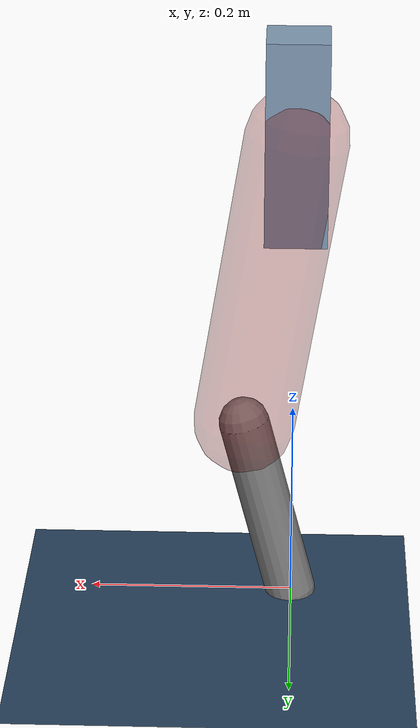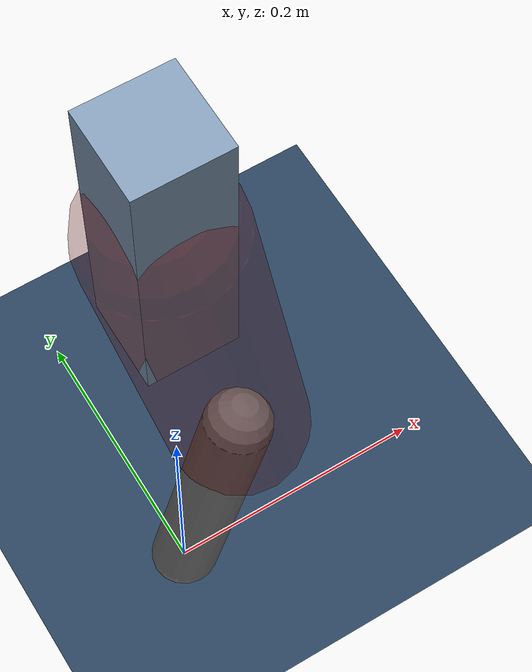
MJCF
<mujoco model="Hopper2D">
	<compiler inertiafromgeom="true" angle="radian" />
	<option timestep="0.001" integrator="implicit" cone="elliptic" solver="Newton" tolerance="1e-10" />

	<default>
		<geom contype="1" conaffinity="1" condim="3" friction="2 0.005 0.0001" solref="0.005 1" />
		<joint limited="true" damping="0.1" />
	</default>

	<asset>
		<texture name="skybox" type="skybox" builtin="gradient" rgb1=".4 .6 .8" rgb2="0 0 0" width="800" height="800" />
		<texture name="grid" type="2d" builtin="checker" rgb1=".1 .2 .3" rgb2=".2 .3 .4" width="300" height="300" mark="edge" markrgb=".2 .3 .4" />
		<material name="ground" texture="grid" texrepeat="1 1" texuniform="true" reflectance="0.1" />
		<material name="leg" rgba="0.5 0.6 0.7 1" />
	</asset>

	<worldbody>

		<geom name="floor" type="plane" size="5 5 0.25" material="ground" />

		<light directional="false" diffuse="0.8 0.8 0.8" specular="0.3 0.3 0.3" pos="0 0 2" dir="0 0 -1" />
		<light mode="targetbodycom" target="base" directional="false" diffuse="0.8 0.8 0.8" specular="0.3 0.3 0.3" pos="0 0 2" dir="0 0 -1" />

		<camera name="fixed" pos="0 -2 1" xyaxes="1 0 0 0 0 1" />
		<camera name="tracking" mode="trackcom" pos="0 -3 1" />

		<body name="root" pos="0 0 0.4799205758702648">
			<joint name="slide_x" type="slide" axis="1 0 0" range="-100 100" />
			<joint name="slide_z" type="slide" axis="0 0 1" range="0 10" />

			<body name="base" pos="0 0 0">
				<geom name="torso" type="box" size="0.03 0.03 0.1" mass="1.744" material="leg" />

				<body name="link1" pos="0 0 0" euler="0 1.4098733457748518 0">
					<joint type="hinge" axis="0 -1 0" pos="0 0 0" name="hinge1" limited="true" range="-3.14 3.14" stiffness="0" damping="0.1" />
					<geom name="thigh" type="capsule" fromto="0 0 0 0.29932144757503276 0 0" size="0.05" rgba="0.5 0 0 0.3" mass="0.9868679084525885" />

					<body name="link2" pos="0.29932144757503276 0 0" euler="0 0.4152849810337169 0">
						<joint type="hinge" axis="0 -1 0" pos="0 0 0" name="hinge2" limited="true" range="-3.14 3.14" stiffness="0" damping="0.1" />
						<geom name="shank" type="capsule" fromto="0 0 0 0.19059912829523204 0 0" size="0.025" mass="0.3929392154657088" />

					</body>
				</body>
			</body>
		</body>
	</worldbody>

	<actuator>
		<motor name="torque1" joint="hinge1" ctrlrange="-65.71622321459199 65.71622321459199" ctrllimited="true" gear="1" />
		<motor name="torque2" joint="hinge2" ctrlrange="-59.357902388844394 59.357902388844394" ctrllimited="true" gear="1" />
	</actuator>
</mujoco>
